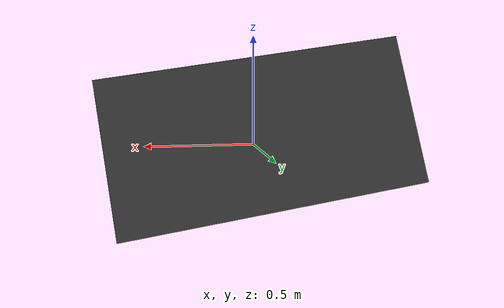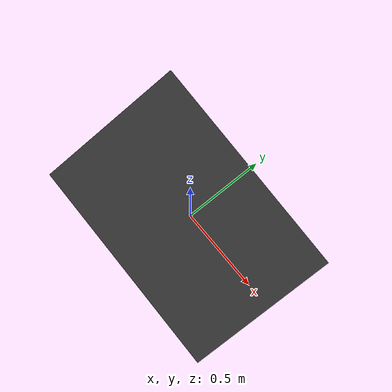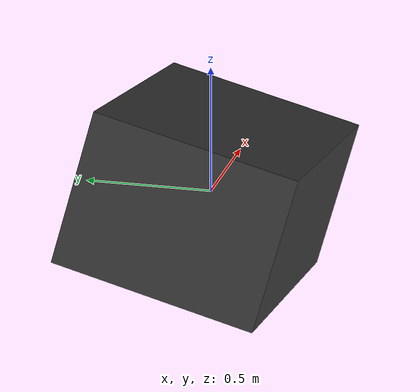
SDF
<?xml version="1.0"?>
<sdf version="1.9">
  <model name="crater_rock_02">
    <static>true</static>
    <link name="rock_link">
      <collision name="rock_collision">
        <pose>0 0 0 0.25 0.15 0</pose>
        <geometry>
          <box>
            <size>1.2 0.8 0.6</size>
          </box>
        </geometry>
        <surface>
          <friction>
            <ode>
              <mu>0.9</mu>
              <mu2>0.9</mu2>
            </ode>
          </friction>
        </surface>
      </collision>
      <visual name="rock_visual">
        <pose>0 0 0 0.25 0.15 0</pose>
        <geometry>
          <box>
            <size>1.2 0.8 0.6</size>
          </box>
        </geometry>
        <material>
          <ambient>0.12 0.12 0.12 1</ambient>
          <diffuse>0.22 0.22 0.22 1</diffuse>
          <specular>0.02 0.02 0.02 1</specular>
        </material>
      </visual>
    </link>
  </model>
</sdf>
